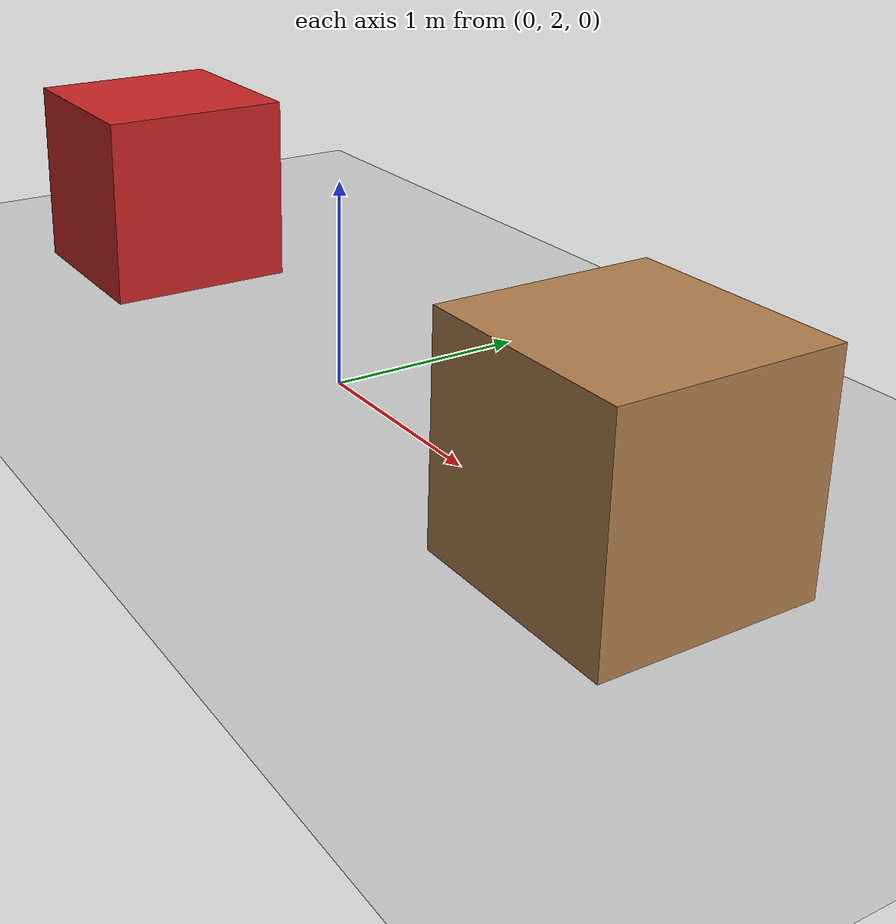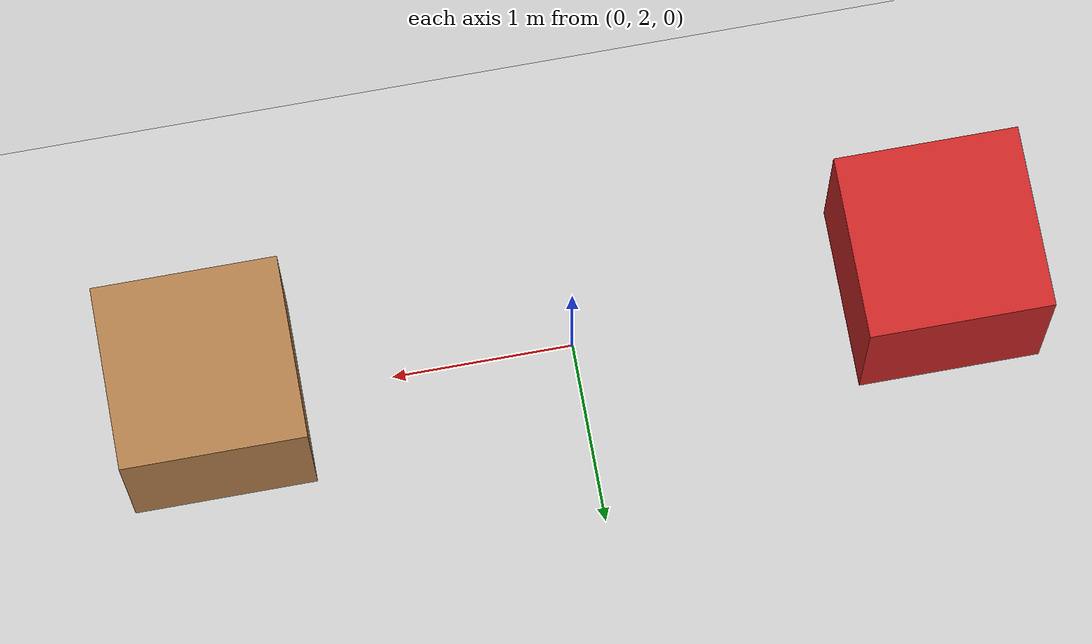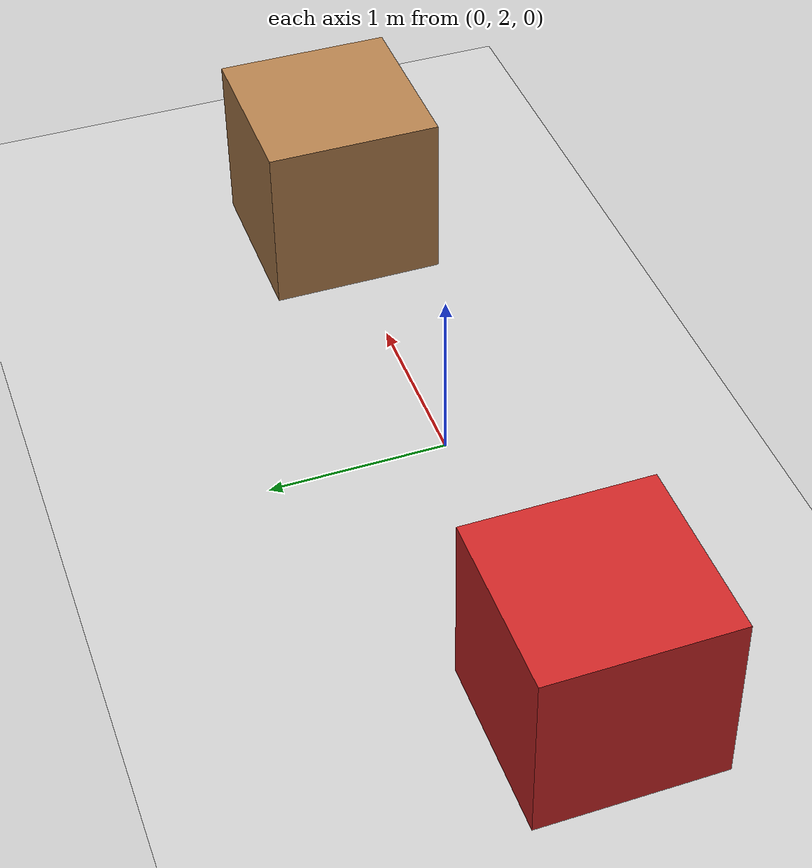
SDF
<?xml version="1.0" ?>
<sdf version="1.6">
  <world name="robotics_world">
    <physics type="ode">
      <max_step_size>0.001</max_step_size>
      <real_time_factor>1</real_time_factor>
    </physics>

    <!-- Light source -->
    <light name="sun" type="directional">
      <cast_shadows>1</cast_shadows>
      <pose>0 0 10 0 0 0</pose>
      <diffuse>0.8 0.8 0.8 1</diffuse>
      <specular>0.2 0.2 0.2 1</specular>
      <attenuation>
        <range>1000</range>
        <constant>0.9</constant>
        <linear>0.01</linear>
        <quadratic>0.001</quadratic>
      </attenuation>
      <direction>-0.5 0.1 -0.9</direction>
    </light>

    <!-- Ground plane -->
    <model name="ground_plane">
      <static>true</static>
      <link name="link">
        <collision name="collision">
          <geometry>
            <plane>
              <normal>0 0 1</normal>
              <size>100 100</size>
            </plane>
          </geometry>
        </collision>
        <visual name="visual">
          <geometry>
            <plane>
              <normal>0 0 1</normal>
              <size>100 100</size>
            </plane>
          </geometry>
          <material>
            <script>
              <uri>file://media/materials/scripts/gazebo.material</uri>
              <name>Gazebo/Grey</name>
            </script>
          </material>
        </visual>
      </link>
    </model>

    <!-- Obstacle 1: Box -->
    <model name="obstacle_box">
      <pose>2 2 0.5 0 0 0</pose>
      <link name="link">
        <inertial>
          <mass>1.0</mass>
          <inertia>
            <ixx>0.166</ixx>
            <ixy>0</ixy>
            <ixz>0</ixz>
            <iyy>0.166</iyy>
            <iyz>0</iyz>
            <izz>0.166</izz>
          </inertia>
        </inertial>
        <collision name="collision">
          <geometry>
            <box>
              <size>1 1 1</size>
            </box>
          </geometry>
        </collision>
        <visual name="visual">
          <geometry>
            <box>
              <size>1 1 1</size>
            </box>
          </geometry>
          <material>
            <script>
              <uri>file://media/materials/scripts/gazebo.material</uri>
              <name>Gazebo/Wood</name>
            </script>
          </material>
        </visual>
      </link>
    </model>

    <!-- Obstacle 2: Another Box -->
    <model name="obstacle_box_2">
      <pose>-2 2 0.5 0 0 0</pose>
      <link name="link">
        <inertial>
          <mass>1.0</mass>
          <inertia>
            <ixx>0.166</ixx>
            <ixy>0</ixy>
            <ixz>0</ixz>
            <iyy>0.166</iyy>
            <iyz>0</iyz>
            <izz>0.166</izz>
          </inertia>
        </inertial>
        <collision name="collision">
          <geometry>
            <box>
              <size>1 1 1</size>
            </box>
          </geometry>
        </collision>
        <visual name="visual">
          <geometry>
            <box>
              <size>1 1 1</size>
            </box>
          </geometry>
          <material>
            <script>
              <uri>file://media/materials/scripts/gazebo.material</uri>
              <name>Gazebo/Red</name>
            </script>
          </material>
        </visual>
      </link>
    </model>

  </world>
</sdf>
